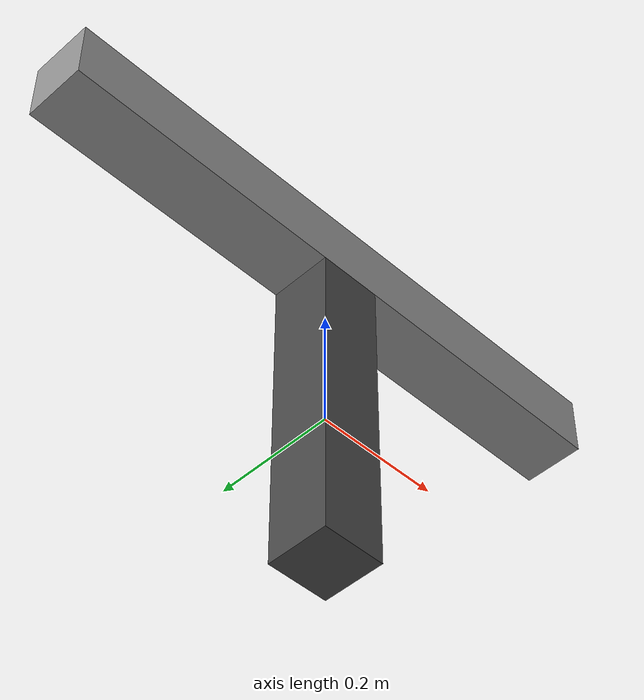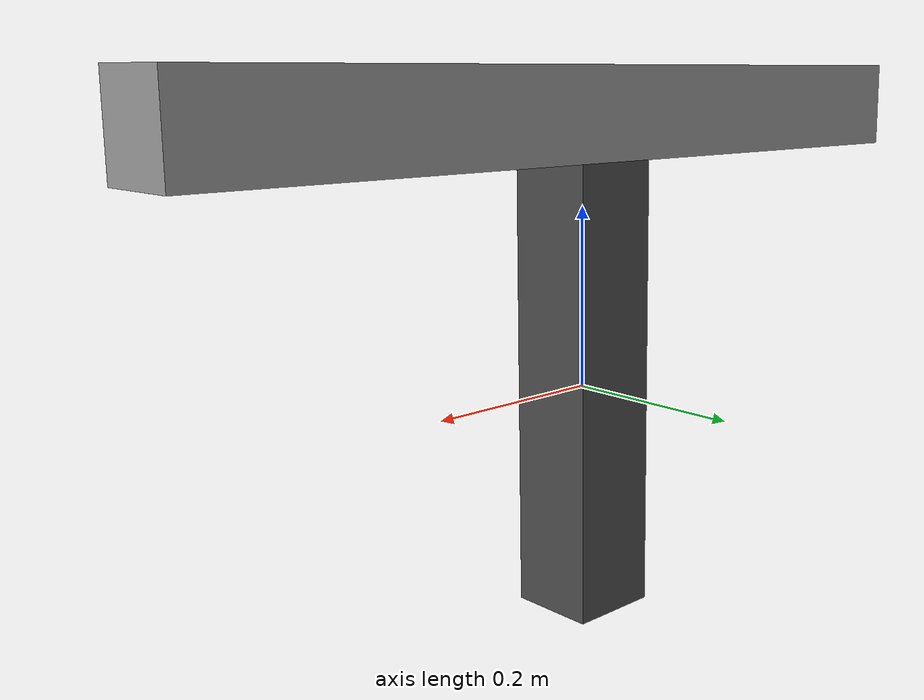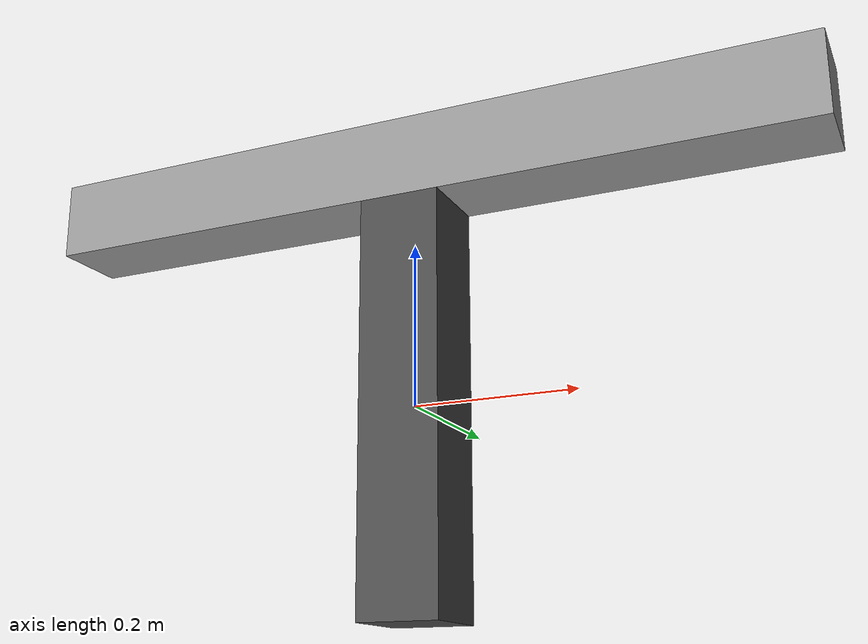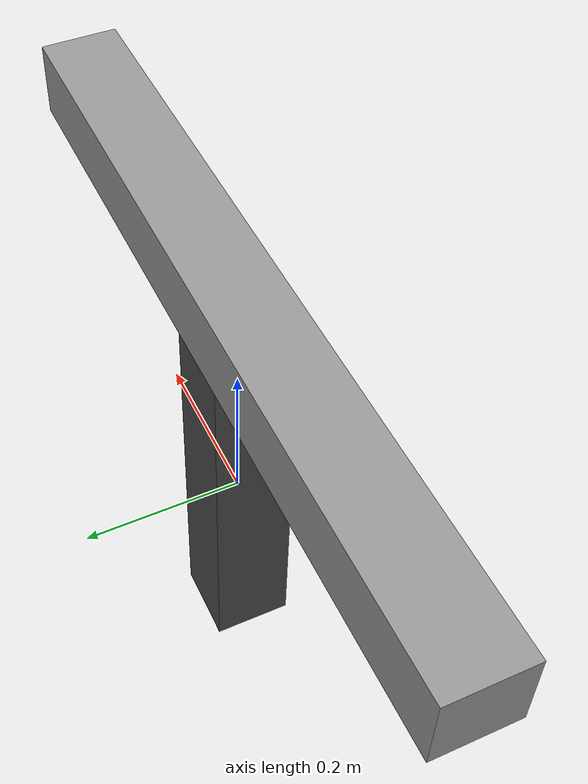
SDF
<?xml version="1.0" ?>
<sdf version="1.5">
    <model name="sensor_mount">
    <static>false</static>

    <!-- phantom link - this is what is linked to when including as fixed-->
    <link name="sensor_mount_base">
        <pose>0 0 0   0 0 0</pose>
    </link>

    <joint name="sensor_mount_pan" type="revolute">
        <parent>sensor_mount_base</parent>
        <child>sensor_mount_link</child>
        <axis>
            <xyz>
                0.0 0.0 1.0
            </xyz>
            <dynamics>
                <damping>0.05</damping>
                <friction>1.05</friction>
            </dynamics>
            <limit>
                <!-- 15 rad/s -->
                <velocity>0.261799</velocity>
            </limit>
        </axis>
    </joint>

    <link name="sensor_mount_link">

        <pose>0 0 0   0 0 0</pose>

        <collision name="collision">
            <geometry>
                <box>
                  <size>0.1 0.1 0.5</size>
                </box>
            </geometry>
            <surface>
                <friction>
                    <ode>
                        <mu>0.35</mu>
                        <mu>0.55</mu>
                    </ode>
                </friction>
            </surface>
        </collision>

        <visual name="visual">
            <pose>0 0 0   0 0 0</pose>
            <geometry>
                <box>
                  <size>0.1 0.1 0.5</size>
                </box>
            </geometry>
            <material>
                <script>
                    <uri>file://media/materials/scripts/gazebo.material</uri>
                    <name>Gazebo/DarkGrey</name>
                </script>
            </material>
        </visual>

        <collision name="collisionhorizontal">
            <pose>0 0 0.3 0 0 0</pose>
            <geometry>
                <box>
                  <size>1.0 0.1 0.1</size>
                </box>
            </geometry>
            <surface>
                <friction>
                    <ode>
                        <mu>0.35</mu>
                        <mu>0.55</mu>
                    </ode>
                </friction>
            </surface>
        </collision>
        <visual name="visualhorizontal">
            <pose>0 0 0.3 0 0 0</pose>
            <geometry>
                <box>
                  <size>1.0 0.1 0.1</size>
                </box>
            </geometry>
            <material>
                <script>
                    <uri>file://media/materials/scripts/gazebo.material</uri>
                    <name>Gazebo/Grey</name>
                </script>
            </material>
        </visual>

        <intertial>
            <mass>25</mass>
        </intertial>

    </link>

    <joint name="sensor_mount_eo_1_tilt" type="revolute">
        <parent>sensor_mount_link</parent>
        <child>sensor_mount_eo_1_link</child>
        <axis>
            <xyz>
                1.0 0.0 0.0
            </xyz>
            <limit>
                <!-- 15 rad/s -->
                <velocity>0.261799</velocity>
                <lower>-1.57</lower>
                <upper>1.57</upper>
            </limit>
            <dynamics>
                <damping>0.05</damping>
                <friction>1.05</friction>
            </dynamics>
        </axis>
    </joint>

    <!-- phantom link to which payload is attached-->
    <link name="sensor_mount_eo_1_link">
        <pose>0.56 0 0.3 0 0 0</pose>
    </link>

    <plugin name="sensor_mount_controller" filename="libsensor_mount_controller.so">
        <topic_name_sub_ptz_targets>
            ptz_targets
        </topic_name_sub_ptz_targets>

        <topic_name_sub_relative_ptz>
            relative_pan_tilt
        </topic_name_sub_relative_ptz>

        <topic_name_pub_status>
            sensor_mount_status
        </topic_name_pub_status>

        <link_name_pan>
            sensor_mount::sensor_mount_base
        </link_name_pan>

        <joint_name_pan>
            sensor_mount_pan
        </joint_name_pan>

        <link_name_tilt>
            sensor_mount_eo_1_link
        </link_name_tilt>

        <joint_name_tilt>
            sensor_mount_eo_1_tilt
        </joint_name_tilt>

        <publish_rate>4</publish_rate>
        <pan_rate>0.0174533</pan_rate>
        <tilt_rate>0.0174533</tilt_rate>

    </plugin>

  </model>
</sdf>
